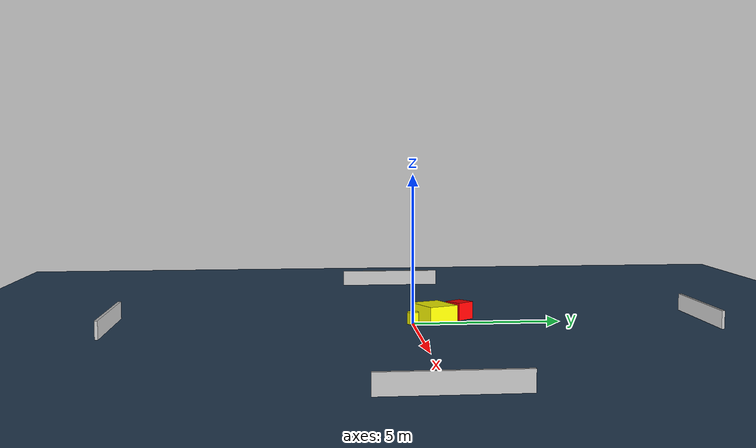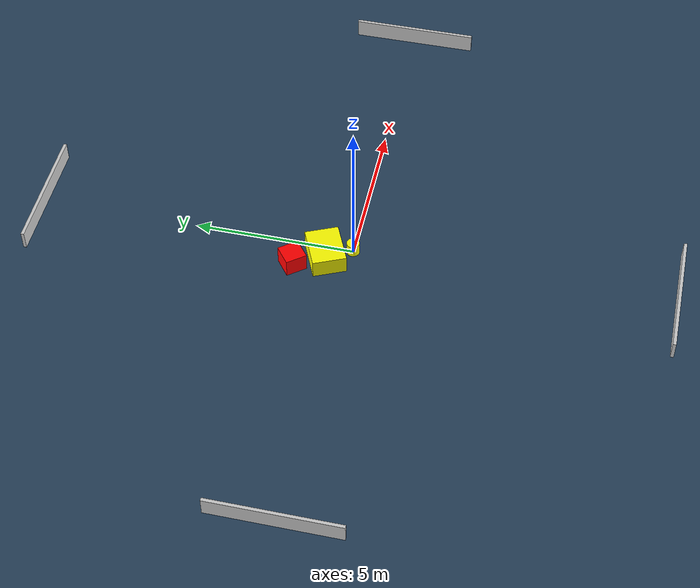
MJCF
<?xml version="1.0" ?>
<mujoco model="generated_environment">
  <option timestep="0.01" integrator="RK4" cone="elliptic"/>
  <default>
    <geom density="1"/>
  </default>
  <asset>
    <texture builtin="gradient" height="3072" name="skybox" rgb1="0.3 0.5 0.7" rgb2="0 0 0" type="skybox" width="512"/>
    <texture builtin="checker" height="300" name="groundplane" rgb1="0.2 0.3 0.4" rgb2="0.1 0.2 0.3" type="2d" width="300"/>
    <material name="groundplane" reflectance="0.2" texrepeat="5 5" texture="groundplane"/>
  </asset>
  <worldbody>
    <light dir="0 0 -1" directional="true" pos="0 0 1.5"/>
    <geom condim="3" friction="0.5 0.005 0.001" material="groundplane" name="floor" pos="0 0 0" size="0 0 0.05" type="plane"/>
    <body name="walls">
      <geom name="wall_1" condim="4" pos="-10.0 0.0 0.3" rgba="0.800000011920929 0.800000011920929 0.800000011920929 1.0" size="0.05 2.0 0.3" type="box"/>
      <geom name="wall_2" condim="4" pos="10.0 0.0 0.3" rgba="0.800000011920929 0.800000011920929 0.800000011920929 1.0" size="0.05 2.0 0.3" type="box"/>
      <geom name="wall_3" condim="4" pos="0.0 -10.0 0.3" rgba="0.800000011920929 0.800000011920929 0.800000011920929 1.0" size="2.0 0.05 0.3" type="box"/>
      <geom name="wall_4" condim="4" pos="0.0 10.0 0.3" rgba="0.800000011920929 0.800000011920929 0.800000011920929 1.0" size="2.0 0.05 0.3" type="box"/>
    </body>
    <body name="robot">
      <joint name="joint_x" type="slide" pos="0 0 0" axis="1 0 0"/>
      <joint name="joint_y" type="slide" pos="0 0 0" axis="0 1 0"/>
      <geom name="robot" type="cylinder" pos="0.0 0.0 0.2" size="0.2 0.2 0.0" mass="5.0" friction="1.0 0.005 0.0001" condim="4" rgba="1.0 1.0 0.0 1.0"/>
    </body>
    <body name="obstacle_1_movable">
      <geom name="obstacle_1_movable" condim="4" pos="-0.42951678836271134 0.7733099890618637 0.3" euler="0 0 24.07816116784901" friction="0.0 0.005 0.001" rgba="1.0 1.0 0.0 1.0" size="0.6558761331085233 0.5270276748502336 0.3" type="box" mass="0.1"/>
      <joint type="free"/>
    </body>
    <body name="obstacle_2_static">
      <geom name="obstacle_2_static" condim="4" pos="-0.9129060333780894 1.7090844897180217 0.3" euler="0 0 217.66592106990953" friction="0.0 0.005 0.001" rgba="1.0 0.0 0.0 1.0" size="0.32929443100114475 0.33611389292633853 0.3" type="box"/>
    </body>
  </worldbody>
  <actuator>
    <motor name="actuator_x" joint="joint_x" gear="1" ctrlrange="-1 1"/>
    <motor name="actuator_y" joint="joint_y" gear="1" ctrlrange="-1 1"/>
  </actuator>
</mujoco>
